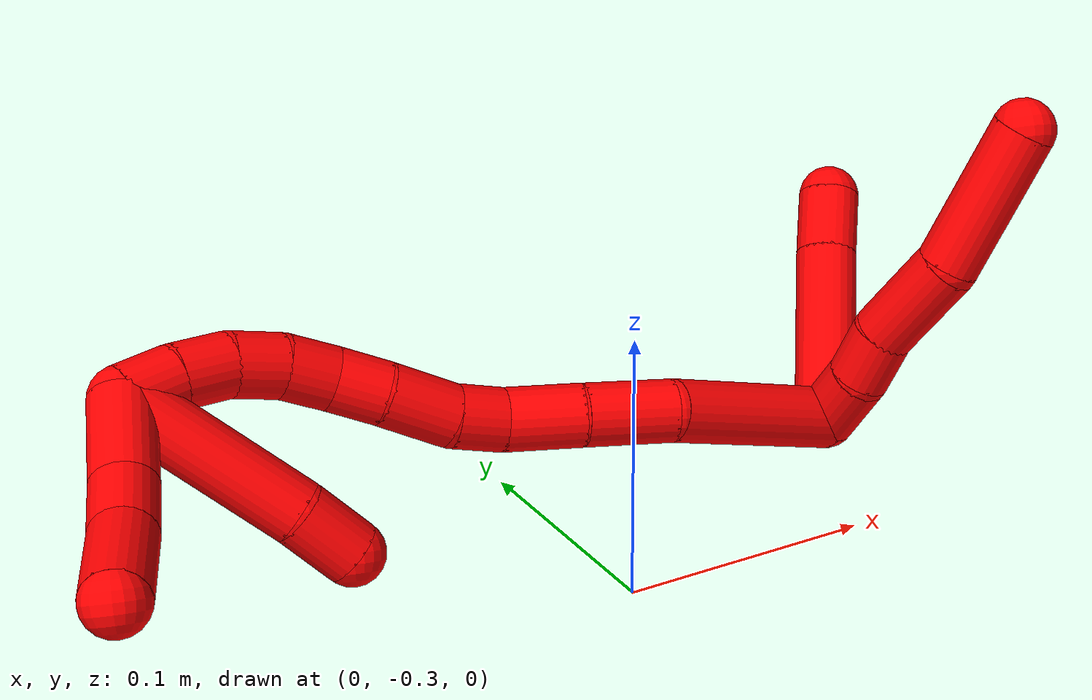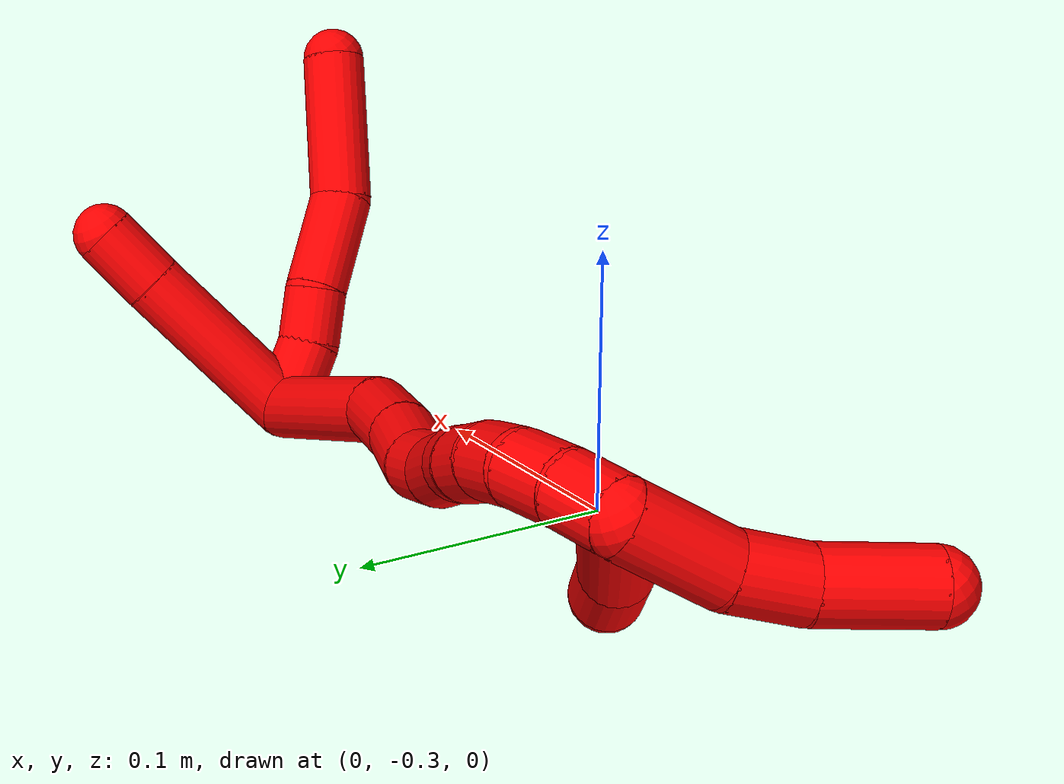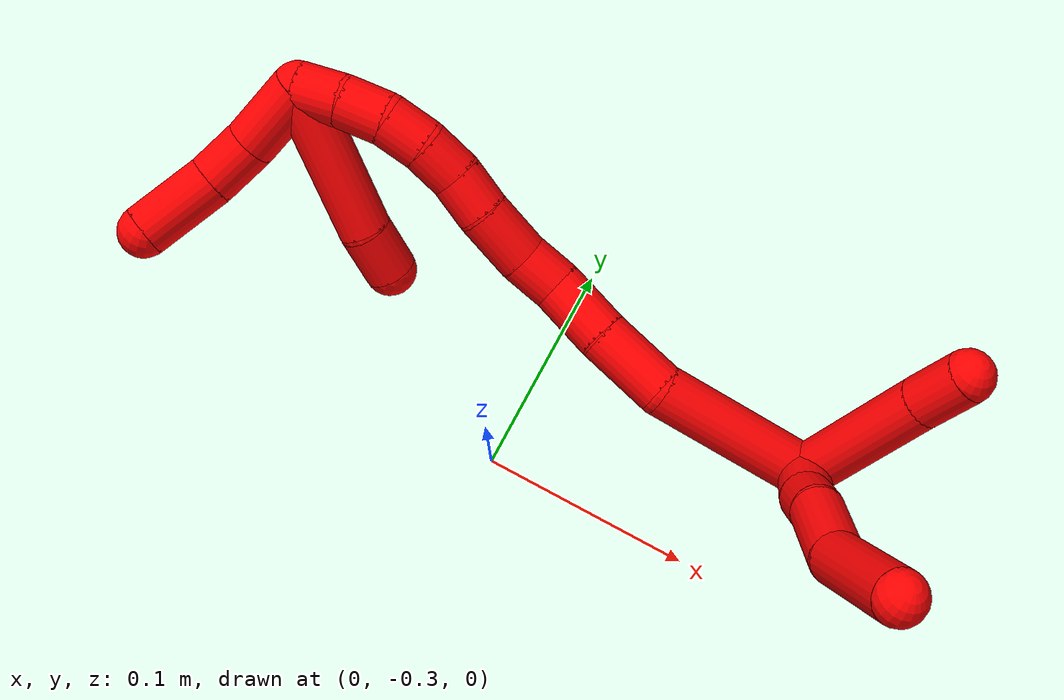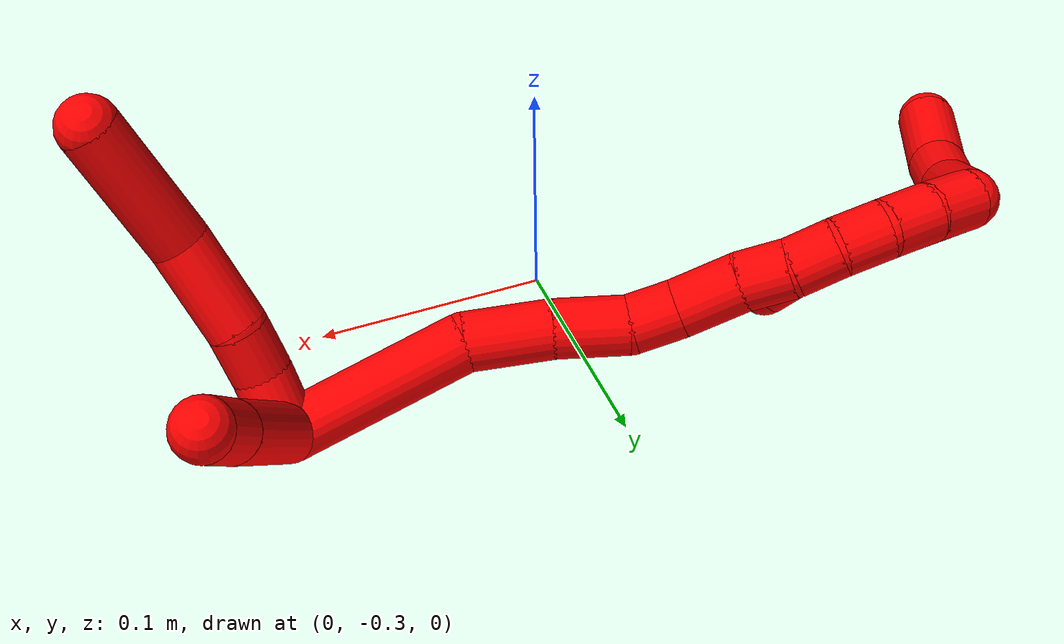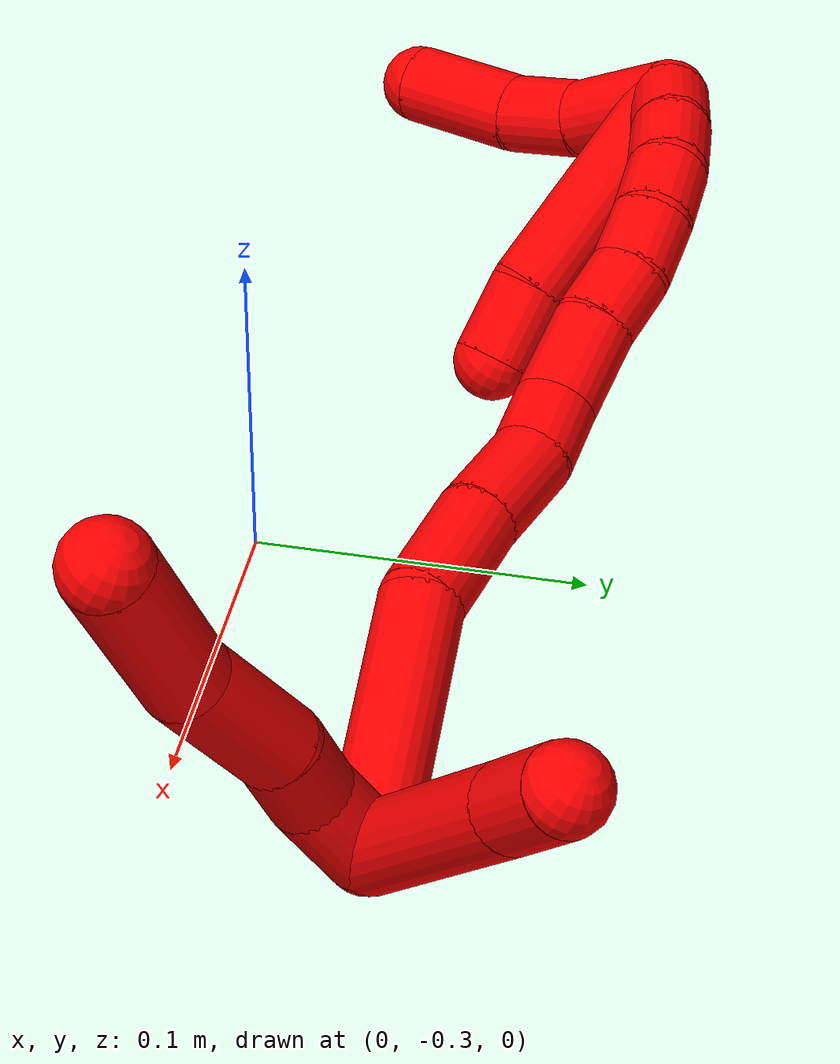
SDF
<sdf version="1.7">
 <world name="default">
  <model name="photoneo_s_sensor">
   <static>1</static>
   <pose>0 0 2 1.57079 1.57079 3.14159</pose>
   <link name="link">
    <inertial><mass>0.1</mass></inertial>
    <sensor name="sensor" type="depth">
     <update_rate>30</update_rate>
     <camera>
      <horizontal_fov>1.22</horizontal_fov>
      <image><width>1920</width><height>1200</height><format>B8G8R8</format></image>
      <clip><near>0.1</near><far>4</far></clip>
      <depth_camera><output>points</output></depth_camera>
     </camera>
     <plugin name="camera_plugin" filename="libgazebo_ros_depth_camera.so">
      <baseline>0.2</baseline>
      <alwaysOn>1</alwaysOn>
      <updateRate>0.0</updateRate>
      <cameraName>camera_ir</cameraName>
      <imageTopicName>/camera/color/image_raw</imageTopicName>
      <cameraInfoTopicName>/camera/color/camera_info</cameraInfoTopicName>
      <depthImageTopicName>/camera/depth/image_raw</depthImageTopicName>
      <depthImageCameraInfoTopicName>/camera/depth/camera_info</depthImageCameraInfoTopicName>
      <pointCloudTopicName>/camera/depth/points</pointCloudTopicName>
      <frameName>fr_optical</frameName>
      <pointCloudCutoff>0.1</pointCloudCutoff>
      <pointCloudCutoffMax>2.0</pointCloudCutoffMax>
      <distortionK1>0</distortionK1>
      <distortionK2>0</distortionK2>
      <distortionK3>0</distortionK3>
      <distortionT1>0</distortionT1>
      <distortionT2>0</distortionT2>
      <CxPrime>0</CxPrime>
      <Cx>0</Cx>
      <Cy>0</Cy>
      <focalLength>0</focalLength>
      <hackBaseline>0</hackBaseline>
     </plugin>
    </sensor>
   </link>
  </model>
  <model name="bin">
   <static>1</static>
   <link name="bottom">
    <collision name="collision-bottom">
     <pose>0 0 -0.01 0 -0 0</pose>
     <geometry><box><size>0.8 0.6 0.02</size></box></geometry>
     <surface>
      <friction><ode><mu>100</mu><mu2>100</mu2></ode></friction>
      <contact><collide_bitmask>65535</collide_bitmask></contact>
     </surface>
    </collision>
   </link>
   <link name="west_wall">
    <collision name="collision-west_wall">
     <pose>-0.41 0 0.1 0 -0 0</pose>
     <geometry><box><size>0.02 0.6 0.2</size></box></geometry>
     <surface>
      <friction><ode><mu>100</mu><mu2>100</mu2></ode></friction>
      <contact><collide_bitmask>65535</collide_bitmask></contact>
     </surface>
    </collision>
   </link>
   <link name="east_wall">
    <collision name="collision-east_wall">
     <pose>0.41 0 0.1 0 -0 0</pose>
     <geometry><box><size>0.02 0.6 0.2</size></box></geometry>
     <surface>
      <friction><ode><mu>100</mu><mu2>100</mu2></ode></friction>
      <contact><collide_bitmask>65535</collide_bitmask></contact>
     </surface>
    </collision>
   </link>
   <link name="south_wall">
    <collision name="collision-south_wall">
     <pose>0 -0.31 0.1 0 -0 0</pose>
     <geometry><box><size>0.8 0.02 0.2</size></box></geometry>
     <surface>
      <friction><ode><mu>100</mu><mu2>100</mu2></ode></friction>
      <contact><collide_bitmask>65535</collide_bitmask></contact>
     </surface>
    </collision>
   </link>
   <link name="north_wall">
    <collision name="collision-north_wall">
     <pose>0 0.31 0.1 0 -0 0</pose>
     <geometry><box><size>0.8 0.02 0.2</size></box></geometry>
     <surface>
      <friction><ode><mu>100</mu><mu2>100</mu2></ode></friction>
      <contact><collide_bitmask>65535</collide_bitmask></contact>
     </surface>
    </collision>
   </link>
  </model>
  <model name="2">
   <static>0</static>
   <link name="2">
    <collision name="collision-cylinder-e_1_2_8">
     <pose>-0.001622 0.011296 -0.007435 -2.15289 -0.119377 0.220845</pose>
     <geometry><cylinder><radius>0.0125</radius><length>0.02724</length></cylinder></geometry>
     <surface>
      <friction><ode><mu>1.16</mu><mu2>1.16</mu2><slip1>0</slip1><slip2>0</slip2></ode></friction>
      <contact><ode><kp>1e+06</kp><kd>1</kd><max_vel>0</max_vel><min_depth>0.001</min_depth></ode></contact>
     </surface>
    </collision>
    <visual name="visual-cylinder-e_1_2_8">
     <pose>-0.001622 0.011296 -0.007435 -2.15289 -0.119377 0.220845</pose>
     <geometry><cylinder><radius>0.0125</radius><length>0.02724</length></cylinder></geometry>
     <material><ambient>1 0 0 1</ambient></material>
    </visual>
    <collision name="collision-cylinder-e_2_8_9">
     <pose>-0.003539 0.030382 -0.022845 -2.36797 -0.026443 0.064899</pose>
     <geometry><cylinder><radius>0.0125</radius><length>0.022305</length></cylinder></geometry>
     <surface>
      <friction><ode><mu>1.16</mu><mu2>1.16</mu2><slip1>0</slip1><slip2>0</slip2></ode></friction>
      <contact><ode><kp>1e+06</kp><kd>1</kd><max_vel>0</max_vel><min_depth>0.001</min_depth></ode></contact>
     </surface>
    </collision>
    <visual name="visual-cylinder-e_2_8_9">
     <pose>-0.003539 0.030382 -0.022845 -2.36797 -0.026443 0.064899</pose>
     <geometry><cylinder><radius>0.0125</radius><length>0.022305</length></cylinder></geometry>
     <material><ambient>1 0 0 1</ambient></material>
    </visual>
    <collision name="collision-cylinder-e_3_9_10">
     <pose>-0.002931 0.055076 -0.041935 -2.15244 0.044594 -0.082658</pose>
     <geometry><cylinder><radius>0.0125</radius><length>0.040502</length></cylinder></geometry>
     <surface>
      <friction><ode><mu>1.16</mu><mu2>1.16</mu2><slip1>0</slip1><slip2>0</slip2></ode></friction>
      <contact><ode><kp>1e+06</kp><kd>1</kd><max_vel>0</max_vel><min_depth>0.001</min_depth></ode></contact>
     </surface>
    </collision>
    <visual name="visual-cylinder-e_3_9_10">
     <pose>-0.002931 0.055076 -0.041935 -2.15244 0.044594 -0.082658</pose>
     <geometry><cylinder><radius>0.0125</radius><length>0.040502</length></cylinder></geometry>
     <material><ambient>1 0 0 1</ambient></material>
    </visual>
    <collision name="collision-cylinder-e_4_10_6">
     <pose>0.002139 0.090491 -0.076257 -2.4683 0.139477 -0.394015</pose>
     <geometry><cylinder><radius>0.0125</radius><length>0.059953</length></cylinder></geometry>
     <surface>
      <friction><ode><mu>1.16</mu><mu2>1.16</mu2><slip1>0</slip1><slip2>0</slip2></ode></friction>
      <contact><ode><kp>1e+06</kp><kd>1</kd><max_vel>0</max_vel><min_depth>0.001</min_depth></ode></contact>
     </surface>
    </collision>
    <visual name="visual-cylinder-e_4_10_6">
     <pose>0.002139 0.090491 -0.076257 -2.4683 0.139477 -0.394015</pose>
     <geometry><cylinder><radius>0.0125</radius><length>0.059953</length></cylinder></geometry>
     <material><ambient>1 0 0 1</ambient></material>
    </visual>
    <collision name="collision-cylinder-e_1_2_11">
     <pose>0.012303 -0.004556 -0.034108 3.00881 0.343355 2.4092</pose>
     <geometry><cylinder><radius>0.0125</radius><length>0.073088</length></cylinder></geometry>
     <surface>
      <friction><ode><mu>1.16</mu><mu2>1.16</mu2><slip1>0</slip1><slip2>0</slip2></ode></friction>
      <contact><ode><kp>1e+06</kp><kd>1</kd><max_vel>0</max_vel><min_depth>0.001</min_depth></ode></contact>
     </surface>
    </collision>
    <visual name="visual-cylinder-e_1_2_11">
     <pose>0.012303 -0.004556 -0.034108 3.00881 0.343355 2.4092</pose>
     <geometry><cylinder><radius>0.0125</radius><length>0.073088</length></cylinder></geometry>
     <material><ambient>1 0 0 1</ambient></material>
    </visual>
    <collision name="collision-cylinder-e_2_11_5">
     <pose>0.029238 -0.01028 -0.080795 3.04903 0.351524 2.6314</pose>
     <geometry><cylinder><radius>0.0125</radius><length>0.026912</length></cylinder></geometry>
     <surface>
      <friction><ode><mu>1.16</mu><mu2>1.16</mu2><slip1>0</slip1><slip2>0</slip2></ode></friction>
      <contact><ode><kp>1e+06</kp><kd>1</kd><max_vel>0</max_vel><min_depth>0.001</min_depth></ode></contact>
     </surface>
    </collision>
    <visual name="visual-cylinder-e_2_11_5">
     <pose>0.029238 -0.01028 -0.080795 3.04903 0.351524 2.6314</pose>
     <geometry><cylinder><radius>0.0125</radius><length>0.026912</length></cylinder></geometry>
     <material><ambient>1 0 0 1</ambient></material>
    </visual>
    <collision name="collision-cylinder-e_1_2_12">
     <pose>-0.038725 -0.005885 -0.005056 2.28053 -1.37306 -2.12</pose>
     <geometry><cylinder><radius>0.0125</radius><length>0.07899</length></cylinder></geometry>
     <surface>
      <friction><ode><mu>1.16</mu><mu2>1.16</mu2><slip1>0</slip1><slip2>0</slip2></ode></friction>
      <contact><ode><kp>1e+06</kp><kd>1</kd><max_vel>0</max_vel><min_depth>0.001</min_depth></ode></contact>
     </surface>
    </collision>
    <visual name="visual-cylinder-e_1_2_12">
     <pose>-0.038725 -0.005885 -0.005056 2.28053 -1.37306 -2.12</pose>
     <geometry><cylinder><radius>0.0125</radius><length>0.07899</length></cylinder></geometry>
     <material><ambient>1 0 0 1</ambient></material>
    </visual>
    <collision name="collision-cylinder-e_2_12_13">
     <pose>-0.093504 -0.020109 -0.011261 1.70778 -1.08787 -1.21321</pose>
     <geometry><cylinder><radius>0.0125</radius><length>0.036252</length></cylinder></geometry>
     <surface>
      <friction><ode><mu>1.16</mu><mu2>1.16</mu2><slip1>0</slip1><slip2>0</slip2></ode></friction>
      <contact><ode><kp>1e+06</kp><kd>1</kd><max_vel>0</max_vel><min_depth>0.001</min_depth></ode></contact>
     </surface>
    </collision>
    <visual name="visual-cylinder-e_2_12_13">
     <pose>-0.093504 -0.020109 -0.011261 1.70778 -1.08787 -1.21321</pose>
     <geometry><cylinder><radius>0.0125</radius><length>0.036252</length></cylinder></geometry>
     <material><ambient>1 0 0 1</ambient></material>
    </visual>
    <collision name="collision-cylinder-e_3_13_14">
     <pose>-0.122633 -0.037024 -0.013314 1.6758 -0.987737 -1.07802</pose>
     <geometry><cylinder><radius>0.0125</radius><length>0.031327</length></cylinder></geometry>
     <surface>
      <friction><ode><mu>1.16</mu><mu2>1.16</mu2><slip1>0</slip1><slip2>0</slip2></ode></friction>
      <contact><ode><kp>1e+06</kp><kd>1</kd><max_vel>0</max_vel><min_depth>0.001</min_depth></ode></contact>
     </surface>
    </collision>
    <visual name="visual-cylinder-e_3_13_14">
     <pose>-0.122633 -0.037024 -0.013314 1.6758 -0.987737 -1.07802</pose>
     <geometry><cylinder><radius>0.0125</radius><length>0.031327</length></cylinder></geometry>
     <material><ambient>1 0 0 1</ambient></material>
    </visual>
    <collision name="collision-cylinder-e_4_14_15">
     <pose>-0.14545 -0.048939 -0.016077 2.07872 -1.19702 -1.71875</pose>
     <geometry><cylinder><radius>0.0125</radius><length>0.020929</length></cylinder></geometry>
     <surface>
      <friction><ode><mu>1.16</mu><mu2>1.16</mu2><slip1>0</slip1><slip2>0</slip2></ode></friction>
      <contact><ode><kp>1e+06</kp><kd>1</kd><max_vel>0</max_vel><min_depth>0.001</min_depth></ode></contact>
     </surface>
    </collision>
    <visual name="visual-cylinder-e_4_14_15">
     <pose>-0.14545 -0.048939 -0.016077 2.07872 -1.19702 -1.71875</pose>
     <geometry><cylinder><radius>0.0125</radius><length>0.020929</length></cylinder></geometry>
     <material><ambient>1 0 0 1</ambient></material>
    </visual>
    <collision name="collision-cylinder-e_5_15_16">
     <pose>-0.167441 -0.056478 -0.0235 2.49504 -1.05334 -2.09613</pose>
     <geometry><cylinder><radius>0.0125</radius><length>0.028188</length></cylinder></geometry>
     <surface>
      <friction><ode><mu>1.16</mu><mu2>1.16</mu2><slip1>0</slip1><slip2>0</slip2></ode></friction>
      <contact><ode><kp>1e+06</kp><kd>1</kd><max_vel>0</max_vel><min_depth>0.001</min_depth></ode></contact>
     </surface>
    </collision>
    <visual name="visual-cylinder-e_5_15_16">
     <pose>-0.167441 -0.056478 -0.0235 2.49504 -1.05334 -2.09613</pose>
     <geometry><cylinder><radius>0.0125</radius><length>0.028188</length></cylinder></geometry>
     <material><ambient>1 0 0 1</ambient></material>
    </visual>
    <collision name="collision-cylinder-e_6_16_17">
     <pose>-0.188263 -0.065081 -0.032968 2.29615 -0.969279 -1.72755</pose>
     <geometry><cylinder><radius>0.0125</radius><length>0.020795</length></cylinder></geometry>
     <surface>
      <friction><ode><mu>1.16</mu><mu2>1.16</mu2><slip1>0</slip1><slip2>0</slip2></ode></friction>
      <contact><ode><kp>1e+06</kp><kd>1</kd><max_vel>0</max_vel><min_depth>0.001</min_depth></ode></contact>
     </surface>
    </collision>
    <visual name="visual-cylinder-e_6_16_17">
     <pose>-0.188263 -0.065081 -0.032968 2.29615 -0.969279 -1.72755</pose>
     <geometry><cylinder><radius>0.0125</radius><length>0.020795</length></cylinder></geometry>
     <material><ambient>1 0 0 1</ambient></material>
    </visual>
    <collision name="collision-cylinder-e_7_17_18">
     <pose>-0.206013 -0.072128 -0.040124 2.45903 -1.14233 -2.13174</pose>
     <geometry><cylinder><radius>0.0125</radius><length>0.02018</length></cylinder></geometry>
     <surface>
      <friction><ode><mu>1.16</mu><mu2>1.16</mu2><slip1>0</slip1><slip2>0</slip2></ode></friction>
      <contact><ode><kp>1e+06</kp><kd>1</kd><max_vel>0</max_vel><min_depth>0.001</min_depth></ode></contact>
     </surface>
    </collision>
    <visual name="visual-cylinder-e_7_17_18">
     <pose>-0.206013 -0.072128 -0.040124 2.45903 -1.14233 -2.13174</pose>
     <geometry><cylinder><radius>0.0125</radius><length>0.02018</length></cylinder></geometry>
     <material><ambient>1 0 0 1</ambient></material>
    </visual>
    <collision name="collision-cylinder-e_8_18_19">
     <pose>-0.224976 -0.077371 -0.044554 1.9959 -1.28713 -1.72119</pose>
     <geometry><cylinder><radius>0.0125</radius><length>0.020383</length></cylinder></geometry>
     <surface>
      <friction><ode><mu>1.16</mu><mu2>1.16</mu2><slip1>0</slip1><slip2>0</slip2></ode></friction>
      <contact><ode><kp>1e+06</kp><kd>1</kd><max_vel>0</max_vel><min_depth>0.001</min_depth></ode></contact>
     </surface>
    </collision>
    <visual name="visual-cylinder-e_8_18_19">
     <pose>-0.224976 -0.077371 -0.044554 1.9959 -1.28713 -1.72119</pose>
     <geometry><cylinder><radius>0.0125</radius><length>0.020383</length></cylinder></geometry>
     <material><ambient>1 0 0 1</ambient></material>
    </visual>
    <collision name="collision-cylinder-e_9_19_20">
     <pose>-0.245254 -0.081993 -0.044286 0.951082 -1.33818 -0.773421</pose>
     <geometry><cylinder><radius>0.0125</radius><length>0.021569</length></cylinder></geometry>
     <surface>
      <friction><ode><mu>1.16</mu><mu2>1.16</mu2><slip1>0</slip1><slip2>0</slip2></ode></friction>
      <contact><ode><kp>1e+06</kp><kd>1</kd><max_vel>0</max_vel><min_depth>0.001</min_depth></ode></contact>
     </surface>
    </collision>
    <visual name="visual-cylinder-e_9_19_20">
     <pose>-0.245254 -0.081993 -0.044286 0.951082 -1.33818 -0.773421</pose>
     <geometry><cylinder><radius>0.0125</radius><length>0.021569</length></cylinder></geometry>
     <material><ambient>1 0 0 1</ambient></material>
    </visual>
    <collision name="collision-cylinder-e_10_20_1">
     <pose>-0.265873 -0.085824 -0.039917 0.553319 -1.24341 -0.401402</pose>
     <geometry><cylinder><radius>0.0125</radius><length>0.021386</length></cylinder></geometry>
     <surface>
      <friction><ode><mu>1.16</mu><mu2>1.16</mu2><slip1>0</slip1><slip2>0</slip2></ode></friction>
      <contact><ode><kp>1e+06</kp><kd>1</kd><max_vel>0</max_vel><min_depth>0.001</min_depth></ode></contact>
     </surface>
    </collision>
    <visual name="visual-cylinder-e_10_20_1">
     <pose>-0.265873 -0.085824 -0.039917 0.553319 -1.24341 -0.401402</pose>
     <geometry><cylinder><radius>0.0125</radius><length>0.021386</length></cylinder></geometry>
     <material><ambient>1 0 0 1</ambient></material>
    </visual>
    <collision name="collision-cylinder-e_1_1_21">
     <pose>-0.250936 -0.073665 -0.013178 -0.530425 0.73713 -0.209035</pose>
     <geometry><cylinder><radius>0.0125</radius><length>0.074571</length></cylinder></geometry>
     <surface>
      <friction><ode><mu>1.16</mu><mu2>1.16</mu2><slip1>0</slip1><slip2>0</slip2></ode></friction>
      <contact><ode><kp>1e+06</kp><kd>1</kd><max_vel>0</max_vel><min_depth>0.001</min_depth></ode></contact>
     </surface>
    </collision>
    <visual name="visual-cylinder-e_1_1_21">
     <pose>-0.250936 -0.073665 -0.013178 -0.530425 0.73713 -0.209035</pose>
     <geometry><cylinder><radius>0.0125</radius><length>0.074571</length></cylinder></geometry>
     <material><ambient>1 0 0 1</ambient></material>
    </visual>
    <collision name="collision-cylinder-e_2_21_4">
     <pose>-0.216769 -0.05712 0.019126 -0.294877 0.798259 -0.125115</pose>
     <geometry><cylinder><radius>0.0125</radius><length>0.025429</length></cylinder></geometry>
     <surface>
      <friction><ode><mu>1.16</mu><mu2>1.16</mu2><slip1>0</slip1><slip2>0</slip2></ode></friction>
      <contact><ode><kp>1e+06</kp><kd>1</kd><max_vel>0</max_vel><min_depth>0.001</min_depth></ode></contact>
     </surface>
    </collision>
    <visual name="visual-cylinder-e_2_21_4">
     <pose>-0.216769 -0.05712 0.019126 -0.294877 0.798259 -0.125115</pose>
     <geometry><cylinder><radius>0.0125</radius><length>0.025429</length></cylinder></geometry>
     <material><ambient>1 0 0 1</ambient></material>
    </visual>
    <collision name="collision-cylinder-e_1_1_22">
     <pose>-0.282209 -0.080062 -0.021858 -0.463737 -0.351793 0.083882</pose>
     <geometry><cylinder><radius>0.0125</radius><length>0.036049</length></cylinder></geometry>
     <surface>
      <friction><ode><mu>1.16</mu><mu2>1.16</mu2><slip1>0</slip1><slip2>0</slip2></ode></friction>
      <contact><ode><kp>1e+06</kp><kd>1</kd><max_vel>0</max_vel><min_depth>0.001</min_depth></ode></contact>
     </surface>
    </collision>
    <visual name="visual-cylinder-e_1_1_22">
     <pose>-0.282209 -0.080062 -0.021858 -0.463737 -0.351793 0.083882</pose>
     <geometry><cylinder><radius>0.0125</radius><length>0.036049</length></cylinder></geometry>
     <material><ambient>1 0 0 1</ambient></material>
    </visual>
    <collision name="collision-cylinder-e_2_22_23">
     <pose>-0.294256 -0.065087 0.00173 -0.719467 -0.47894 0.183139</pose>
     <geometry><cylinder><radius>0.0125</radius><length>0.025329</length></cylinder></geometry>
     <surface>
      <friction><ode><mu>1.16</mu><mu2>1.16</mu2><slip1>0</slip1><slip2>0</slip2></ode></friction>
      <contact><ode><kp>1e+06</kp><kd>1</kd><max_vel>0</max_vel><min_depth>0.001</min_depth></ode></contact>
     </surface>
    </collision>
    <visual name="visual-cylinder-e_2_22_23">
     <pose>-0.294256 -0.065087 0.00173 -0.719467 -0.47894 0.183139</pose>
     <geometry><cylinder><radius>0.0125</radius><length>0.025329</length></cylinder></geometry>
     <material><ambient>1 0 0 1</ambient></material>
    </visual>
    <collision name="collision-cylinder-e_3_23_3">
     <pose>-0.310827 -0.04502 0.020052 -0.908724 -0.589414 0.294387</pose>
     <geometry><cylinder><radius>0.0125</radius><length>0.038622</length></cylinder></geometry>
     <surface>
      <friction><ode><mu>1.16</mu><mu2>1.16</mu2><slip1>0</slip1><slip2>0</slip2></ode></friction>
      <contact><ode><kp>1e+06</kp><kd>1</kd><max_vel>0</max_vel><min_depth>0.001</min_depth></ode></contact>
     </surface>
    </collision>
    <visual name="visual-cylinder-e_3_23_3">
     <pose>-0.310827 -0.04502 0.020052 -0.908724 -0.589414 0.294387</pose>
     <geometry><cylinder><radius>0.0125</radius><length>0.038622</length></cylinder></geometry>
     <material><ambient>1 0 0 1</ambient></material>
    </visual>
    <collision name="collision-sphere-3">
     <pose>-0.321562 -0.032359 0.02992 0 -0 0</pose>
     <geometry><sphere><radius>0.0125</radius></sphere></geometry>
     <surface>
      <friction><ode><mu>1.16</mu><mu2>1.16</mu2><slip1>0</slip1><slip2>0</slip2></ode></friction>
      <contact><ode><kp>1e+06</kp><kd>1</kd><max_vel>0</max_vel><min_depth>0.001</min_depth></ode></contact>
     </surface>
    </collision>
    <visual name="visual-sphere-3">
     <pose>-0.321562 -0.032359 0.02992 0 -0 0</pose>
     <geometry><sphere><radius>0.0125</radius></sphere></geometry>
     <material><ambient>1 0 0 1</ambient></material>
    </visual>
    <collision name="collision-sphere-23">
     <pose>-0.300093 -0.057681 0.010184 0 -0 0</pose>
     <geometry><sphere><radius>0.0125</radius></sphere></geometry>
     <surface>
      <friction><ode><mu>1.16</mu><mu2>1.16</mu2><slip1>0</slip1><slip2>0</slip2></ode></friction>
      <contact><ode><kp>1e+06</kp><kd>1</kd><max_vel>0</max_vel><min_depth>0.001</min_depth></ode></contact>
     </surface>
    </collision>
    <visual name="visual-sphere-23">
     <pose>-0.300093 -0.057681 0.010184 0 -0 0</pose>
     <geometry><sphere><radius>0.0125</radius></sphere></geometry>
     <material><ambient>1 0 0 1</ambient></material>
    </visual>
    <collision name="collision-sphere-22">
     <pose>-0.28842 -0.072494 -0.006724 0 -0 0</pose>
     <geometry><sphere><radius>0.0125</radius></sphere></geometry>
     <surface>
      <friction><ode><mu>1.16</mu><mu2>1.16</mu2><slip1>0</slip1><slip2>0</slip2></ode></friction>
      <contact><ode><kp>1e+06</kp><kd>1</kd><max_vel>0</max_vel><min_depth>0.001</min_depth></ode></contact>
     </surface>
    </collision>
    <visual name="visual-sphere-22">
     <pose>-0.28842 -0.072494 -0.006724 0 -0 0</pose>
     <geometry><sphere><radius>0.0125</radius></sphere></geometry>
     <material><ambient>1 0 0 1</ambient></material>
    </visual>
    <collision name="collision-sphere-4">
     <pose>-0.207663 -0.054541 0.027617 0 -0 0</pose>
     <geometry><sphere><radius>0.0125</radius></sphere></geometry>
     <surface>
      <friction><ode><mu>1.16</mu><mu2>1.16</mu2><slip1>0</slip1><slip2>0</slip2></ode></friction>
      <contact><ode><kp>1e+06</kp><kd>1</kd><max_vel>0</max_vel><min_depth>0.001</min_depth></ode></contact>
     </surface>
    </collision>
    <visual name="visual-sphere-4">
     <pose>-0.207663 -0.054541 0.027617 0 -0 0</pose>
     <geometry><sphere><radius>0.0125</radius></sphere></geometry>
     <material><ambient>1 0 0 1</ambient></material>
    </visual>
    <collision name="collision-sphere-21">
     <pose>-0.225874 -0.059699 0.010635 0 -0 0</pose>
     <geometry><sphere><radius>0.0125</radius></sphere></geometry>
     <surface>
      <friction><ode><mu>1.16</mu><mu2>1.16</mu2><slip1>0</slip1><slip2>0</slip2></ode></friction>
      <contact><ode><kp>1e+06</kp><kd>1</kd><max_vel>0</max_vel><min_depth>0.001</min_depth></ode></contact>
     </surface>
    </collision>
    <visual name="visual-sphere-21">
     <pose>-0.225874 -0.059699 0.010635 0 -0 0</pose>
     <geometry><sphere><radius>0.0125</radius></sphere></geometry>
     <material><ambient>1 0 0 1</ambient></material>
    </visual>
    <collision name="collision-sphere-1">
     <pose>-0.275998 -0.087631 -0.036991 0 -0 0</pose>
     <geometry><sphere><radius>0.0125</radius></sphere></geometry>
     <surface>
      <friction><ode><mu>1.16</mu><mu2>1.16</mu2><slip1>0</slip1><slip2>0</slip2></ode></friction>
      <contact><ode><kp>1e+06</kp><kd>1</kd><max_vel>0</max_vel><min_depth>0.001</min_depth></ode></contact>
     </surface>
    </collision>
    <visual name="visual-sphere-1">
     <pose>-0.275998 -0.087631 -0.036991 0 -0 0</pose>
     <geometry><sphere><radius>0.0125</radius></sphere></geometry>
     <material><ambient>1 0 0 1</ambient></material>
    </visual>
    <collision name="collision-sphere-11">
     <pose>0.024605 -0.009112 -0.068216 0 -0 0</pose>
     <geometry><sphere><radius>0.0125</radius></sphere></geometry>
     <surface>
      <friction><ode><mu>1.16</mu><mu2>1.16</mu2><slip1>0</slip1><slip2>0</slip2></ode></friction>
      <contact><ode><kp>1e+06</kp><kd>1</kd><max_vel>0</max_vel><min_depth>0.001</min_depth></ode></contact>
     </surface>
    </collision>
    <visual name="visual-sphere-11">
     <pose>0.024605 -0.009112 -0.068216 0 -0 0</pose>
     <geometry><sphere><radius>0.0125</radius></sphere></geometry>
     <material><ambient>1 0 0 1</ambient></material>
    </visual>
    <collision name="collision-sphere-6">
     <pose>0.006307 0.109001 -0.099465 0 -0 0</pose>
     <geometry><sphere><radius>0.0125</radius></sphere></geometry>
     <surface>
      <friction><ode><mu>1.16</mu><mu2>1.16</mu2><slip1>0</slip1><slip2>0</slip2></ode></friction>
      <contact><ode><kp>1e+06</kp><kd>1</kd><max_vel>0</max_vel><min_depth>0.001</min_depth></ode></contact>
     </surface>
    </collision>
    <visual name="visual-sphere-6">
     <pose>0.006307 0.109001 -0.099465 0 -0 0</pose>
     <geometry><sphere><radius>0.0125</radius></sphere></geometry>
     <material><ambient>1 0 0 1</ambient></material>
    </visual>
    <collision name="collision-sphere-10">
     <pose>-0.002028 0.07198 -0.05305 0 -0 0</pose>
     <geometry><sphere><radius>0.0125</radius></sphere></geometry>
     <surface>
      <friction><ode><mu>1.16</mu><mu2>1.16</mu2><slip1>0</slip1><slip2>0</slip2></ode></friction>
      <contact><ode><kp>1e+06</kp><kd>1</kd><max_vel>0</max_vel><min_depth>0.001</min_depth></ode></contact>
     </surface>
    </collision>
    <visual name="visual-sphere-10">
     <pose>-0.002028 0.07198 -0.05305 0 -0 0</pose>
     <geometry><sphere><radius>0.0125</radius></sphere></geometry>
     <material><ambient>1 0 0 1</ambient></material>
    </visual>
    <collision name="collision-sphere-9">
     <pose>-0.003834 0.038172 -0.030821 0 -0 0</pose>
     <geometry><sphere><radius>0.0125</radius></sphere></geometry>
     <surface>
      <friction><ode><mu>1.16</mu><mu2>1.16</mu2><slip1>0</slip1><slip2>0</slip2></ode></friction>
      <contact><ode><kp>1e+06</kp><kd>1</kd><max_vel>0</max_vel><min_depth>0.001</min_depth></ode></contact>
     </surface>
    </collision>
    <visual name="visual-sphere-9">
     <pose>-0.003834 0.038172 -0.030821 0 -0 0</pose>
     <geometry><sphere><radius>0.0125</radius></sphere></geometry>
     <material><ambient>1 0 0 1</ambient></material>
    </visual>
    <collision name="collision-sphere-2">
     <geometry><sphere><radius>0.0125</radius></sphere></geometry>
     <surface>
      <friction><ode><mu>1.16</mu><mu2>1.16</mu2><slip1>0</slip1><slip2>0</slip2></ode></friction>
      <contact><ode><kp>1e+06</kp><kd>1</kd><max_vel>0</max_vel><min_depth>0.001</min_depth></ode></contact>
     </surface>
    </collision>
    <visual name="visual-sphere-2">
     <geometry><sphere><radius>0.0125</radius></sphere></geometry>
     <material><ambient>1 0 0 1</ambient></material>
    </visual>
    <collision name="collision-sphere-19">
     <pose>-0.23476 -0.079969 -0.04573 0 -0 0</pose>
     <geometry><sphere><radius>0.0125</radius></sphere></geometry>
     <surface>
      <friction><ode><mu>1.16</mu><mu2>1.16</mu2><slip1>0</slip1><slip2>0</slip2></ode></friction>
      <contact><ode><kp>1e+06</kp><kd>1</kd><max_vel>0</max_vel><min_depth>0.001</min_depth></ode></contact>
     </surface>
    </collision>
    <visual name="visual-sphere-19">
     <pose>-0.23476 -0.079969 -0.04573 0 -0 0</pose>
     <geometry><sphere><radius>0.0125</radius></sphere></geometry>
     <material><ambient>1 0 0 1</ambient></material>
    </visual>
    <collision name="collision-sphere-8">
     <pose>-0.003244 0.022592 -0.014869 0 -0 0</pose>
     <geometry><sphere><radius>0.0125</radius></sphere></geometry>
     <surface>
      <friction><ode><mu>1.16</mu><mu2>1.16</mu2><slip1>0</slip1><slip2>0</slip2></ode></friction>
      <contact><ode><kp>1e+06</kp><kd>1</kd><max_vel>0</max_vel><min_depth>0.001</min_depth></ode></contact>
     </surface>
    </collision>
    <visual name="visual-sphere-8">
     <pose>-0.003244 0.022592 -0.014869 0 -0 0</pose>
     <geometry><sphere><radius>0.0125</radius></sphere></geometry>
     <material><ambient>1 0 0 1</ambient></material>
    </visual>
    <collision name="collision-sphere-5">
     <pose>0.033872 -0.011447 -0.093374 0 -0 0</pose>
     <geometry><sphere><radius>0.0125</radius></sphere></geometry>
     <surface>
      <friction><ode><mu>1.16</mu><mu2>1.16</mu2><slip1>0</slip1><slip2>0</slip2></ode></friction>
      <contact><ode><kp>1e+06</kp><kd>1</kd><max_vel>0</max_vel><min_depth>0.001</min_depth></ode></contact>
     </surface>
    </collision>
    <visual name="visual-sphere-5">
     <pose>0.033872 -0.011447 -0.093374 0 -0 0</pose>
     <geometry><sphere><radius>0.0125</radius></sphere></geometry>
     <material><ambient>1 0 0 1</ambient></material>
    </visual>
    <collision name="collision-sphere-12">
     <pose>-0.077451 -0.011771 -0.010112 0 -0 0</pose>
     <geometry><sphere><radius>0.0125</radius></sphere></geometry>
     <surface>
      <friction><ode><mu>1.16</mu><mu2>1.16</mu2><slip1>0</slip1><slip2>0</slip2></ode></friction>
      <contact><ode><kp>1e+06</kp><kd>1</kd><max_vel>0</max_vel><min_depth>0.001</min_depth></ode></contact>
     </surface>
    </collision>
    <visual name="visual-sphere-12">
     <pose>-0.077451 -0.011771 -0.010112 0 -0 0</pose>
     <geometry><sphere><radius>0.0125</radius></sphere></geometry>
     <material><ambient>1 0 0 1</ambient></material>
    </visual>
    <collision name="collision-sphere-13">
     <pose>-0.109557 -0.028447 -0.012411 0 -0 0</pose>
     <geometry><sphere><radius>0.0125</radius></sphere></geometry>
     <surface>
      <friction><ode><mu>1.16</mu><mu2>1.16</mu2><slip1>0</slip1><slip2>0</slip2></ode></friction>
      <contact><ode><kp>1e+06</kp><kd>1</kd><max_vel>0</max_vel><min_depth>0.001</min_depth></ode></contact>
     </surface>
    </collision>
    <visual name="visual-sphere-13">
     <pose>-0.109557 -0.028447 -0.012411 0 -0 0</pose>
     <geometry><sphere><radius>0.0125</radius></sphere></geometry>
     <material><ambient>1 0 0 1</ambient></material>
    </visual>
    <collision name="collision-sphere-14">
     <pose>-0.135708 -0.0456 -0.014218 0 -0 0</pose>
     <geometry><sphere><radius>0.0125</radius></sphere></geometry>
     <surface>
      <friction><ode><mu>1.16</mu><mu2>1.16</mu2><slip1>0</slip1><slip2>0</slip2></ode></friction>
      <contact><ode><kp>1e+06</kp><kd>1</kd><max_vel>0</max_vel><min_depth>0.001</min_depth></ode></contact>
     </surface>
    </collision>
    <visual name="visual-sphere-14">
     <pose>-0.135708 -0.0456 -0.014218 0 -0 0</pose>
     <geometry><sphere><radius>0.0125</radius></sphere></geometry>
     <material><ambient>1 0 0 1</ambient></material>
    </visual>
    <collision name="collision-sphere-15">
     <pose>-0.155192 -0.052278 -0.017935 0 -0 0</pose>
     <geometry><sphere><radius>0.0125</radius></sphere></geometry>
     <surface>
      <friction><ode><mu>1.16</mu><mu2>1.16</mu2><slip1>0</slip1><slip2>0</slip2></ode></friction>
      <contact><ode><kp>1e+06</kp><kd>1</kd><max_vel>0</max_vel><min_depth>0.001</min_depth></ode></contact>
     </surface>
    </collision>
    <visual name="visual-sphere-15">
     <pose>-0.155192 -0.052278 -0.017935 0 -0 0</pose>
     <geometry><sphere><radius>0.0125</radius></sphere></geometry>
     <material><ambient>1 0 0 1</ambient></material>
    </visual>
    <collision name="collision-sphere-16">
     <pose>-0.17969 -0.060678 -0.029065 0 -0 0</pose>
     <geometry><sphere><radius>0.0125</radius></sphere></geometry>
     <surface>
      <friction><ode><mu>1.16</mu><mu2>1.16</mu2><slip1>0</slip1><slip2>0</slip2></ode></friction>
      <contact><ode><kp>1e+06</kp><kd>1</kd><max_vel>0</max_vel><min_depth>0.001</min_depth></ode></contact>
     </surface>
    </collision>
    <visual name="visual-sphere-16">
     <pose>-0.17969 -0.060678 -0.029065 0 -0 0</pose>
     <geometry><sphere><radius>0.0125</radius></sphere></geometry>
     <material><ambient>1 0 0 1</ambient></material>
    </visual>
    <collision name="collision-sphere-17">
     <pose>-0.196835 -0.069483 -0.036871 0 -0 0</pose>
     <geometry><sphere><radius>0.0125</radius></sphere></geometry>
     <surface>
      <friction><ode><mu>1.16</mu><mu2>1.16</mu2><slip1>0</slip1><slip2>0</slip2></ode></friction>
      <contact><ode><kp>1e+06</kp><kd>1</kd><max_vel>0</max_vel><min_depth>0.001</min_depth></ode></contact>
     </surface>
    </collision>
    <visual name="visual-sphere-17">
     <pose>-0.196835 -0.069483 -0.036871 0 -0 0</pose>
     <geometry><sphere><radius>0.0125</radius></sphere></geometry>
     <material><ambient>1 0 0 1</ambient></material>
    </visual>
    <collision name="collision-sphere-18">
     <pose>-0.215191 -0.074772 -0.043377 0 -0 0</pose>
     <geometry><sphere><radius>0.0125</radius></sphere></geometry>
     <surface>
      <friction><ode><mu>1.16</mu><mu2>1.16</mu2><slip1>0</slip1><slip2>0</slip2></ode></friction>
      <contact><ode><kp>1e+06</kp><kd>1</kd><max_vel>0</max_vel><min_depth>0.001</min_depth></ode></contact>
     </surface>
    </collision>
    <visual name="visual-sphere-18">
     <pose>-0.215191 -0.074772 -0.043377 0 -0 0</pose>
     <geometry><sphere><radius>0.0125</radius></sphere></geometry>
     <material><ambient>1 0 0 1</ambient></material>
    </visual>
    <collision name="collision-sphere-20">
     <pose>-0.255748 -0.084017 -0.042842 0 -0 0</pose>
     <geometry><sphere><radius>0.0125</radius></sphere></geometry>
     <surface>
      <friction><ode><mu>1.16</mu><mu2>1.16</mu2><slip1>0</slip1><slip2>0</slip2></ode></friction>
      <contact><ode><kp>1e+06</kp><kd>1</kd><max_vel>0</max_vel><min_depth>0.001</min_depth></ode></contact>
     </surface>
    </collision>
    <visual name="visual-sphere-20">
     <pose>-0.255748 -0.084017 -0.042842 0 -0 0</pose>
     <geometry><sphere><radius>0.0125</radius></sphere></geometry>
     <material><ambient>1 0 0 1</ambient></material>
    </visual>
    <inertial>
     <pose>-0.125296 -0.024197 -0.024736 0 -0 0</pose>
     <mass>0.75</mass>
     <inertia><ixx>2.1e-05</ixx><ixy>0</ixy><ixz>0</ixz><iyy>0.000122</iyy><iyz>0</iyz><izz>-6e-06</izz></inertia>
    </inertial>
   </link>
   <pose>0.131367 -0.236977 0.012194 2.72597 0.229774 0.213153</pose>
  </model>
 </world>
</sdf>
